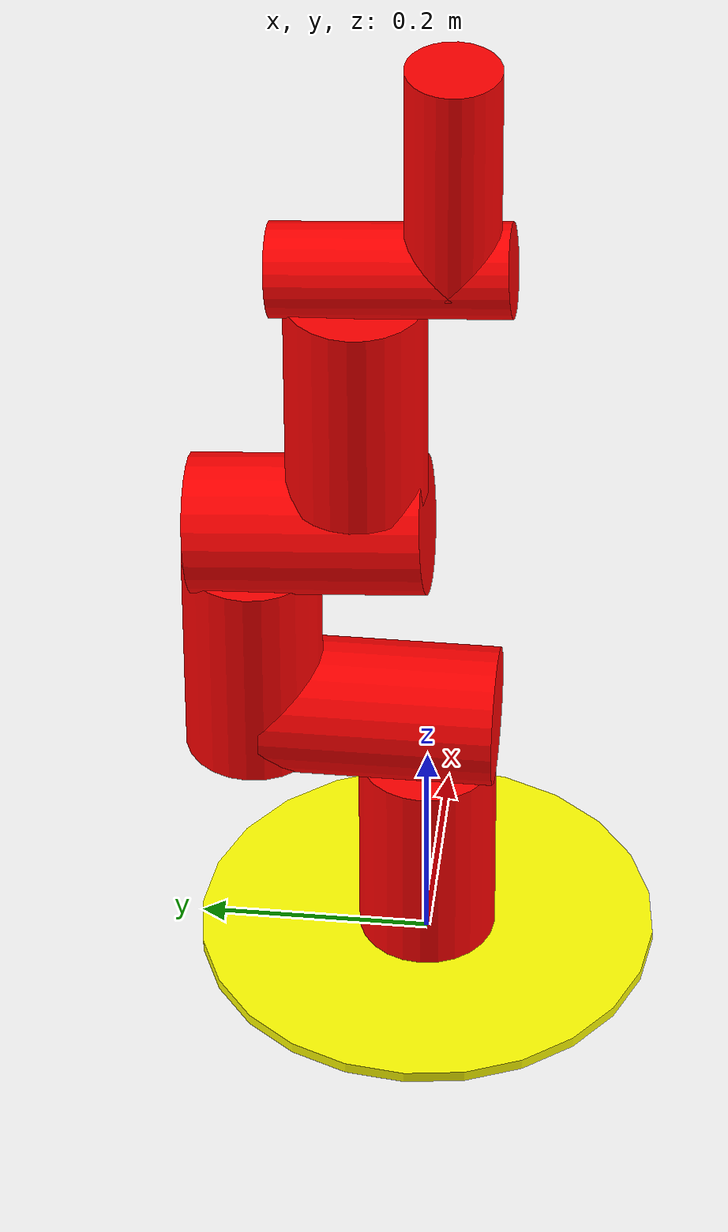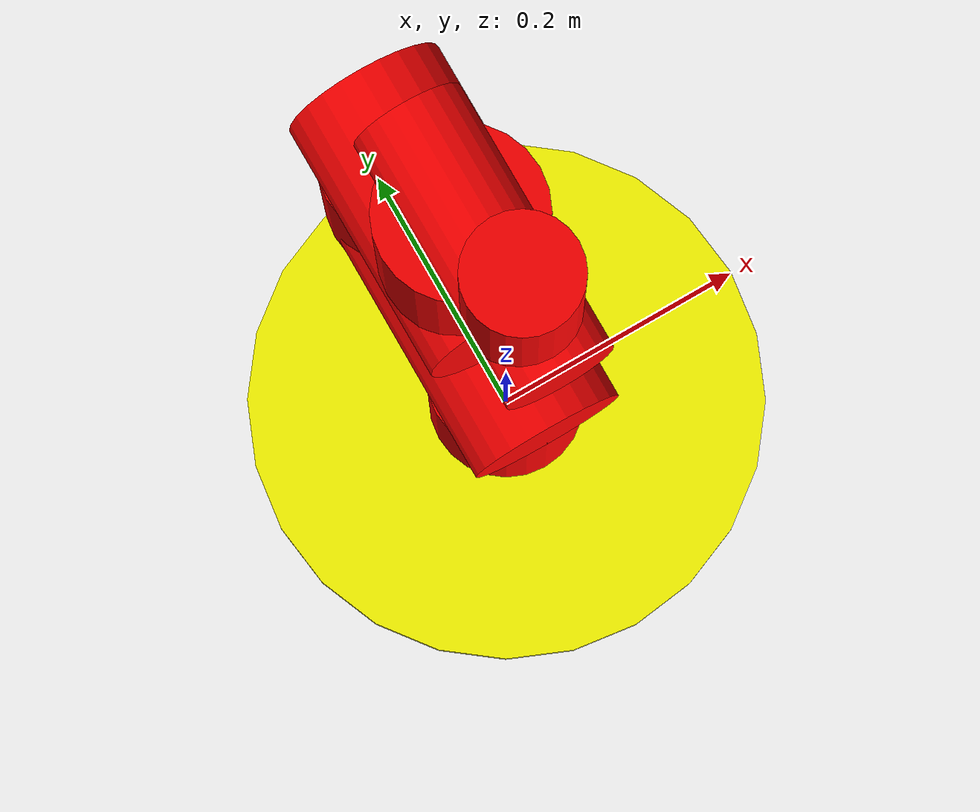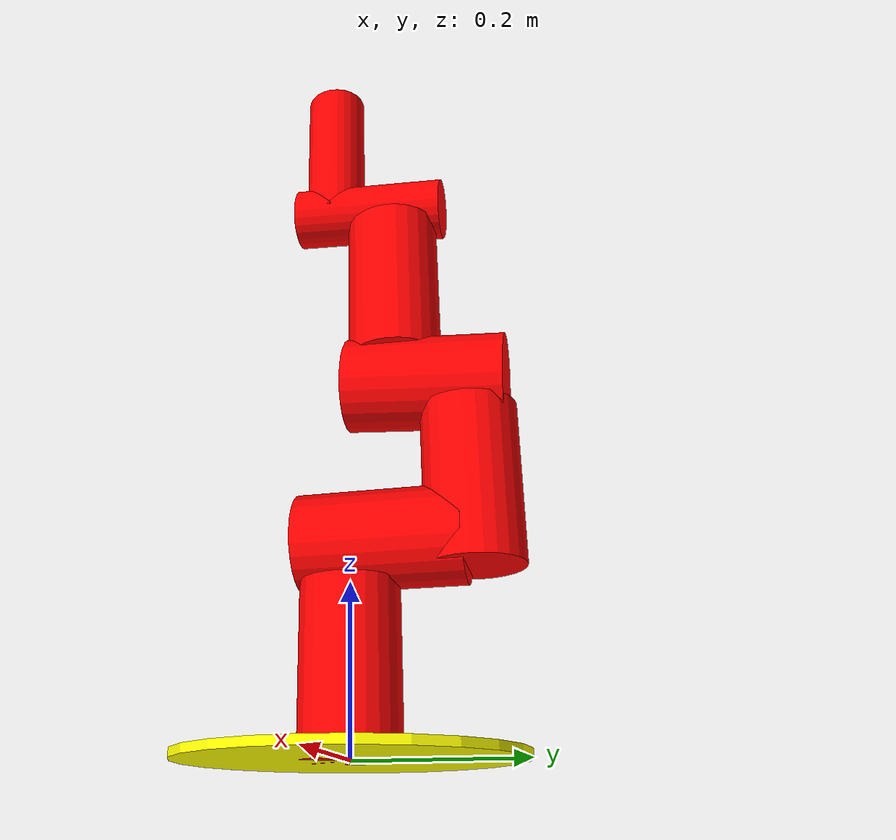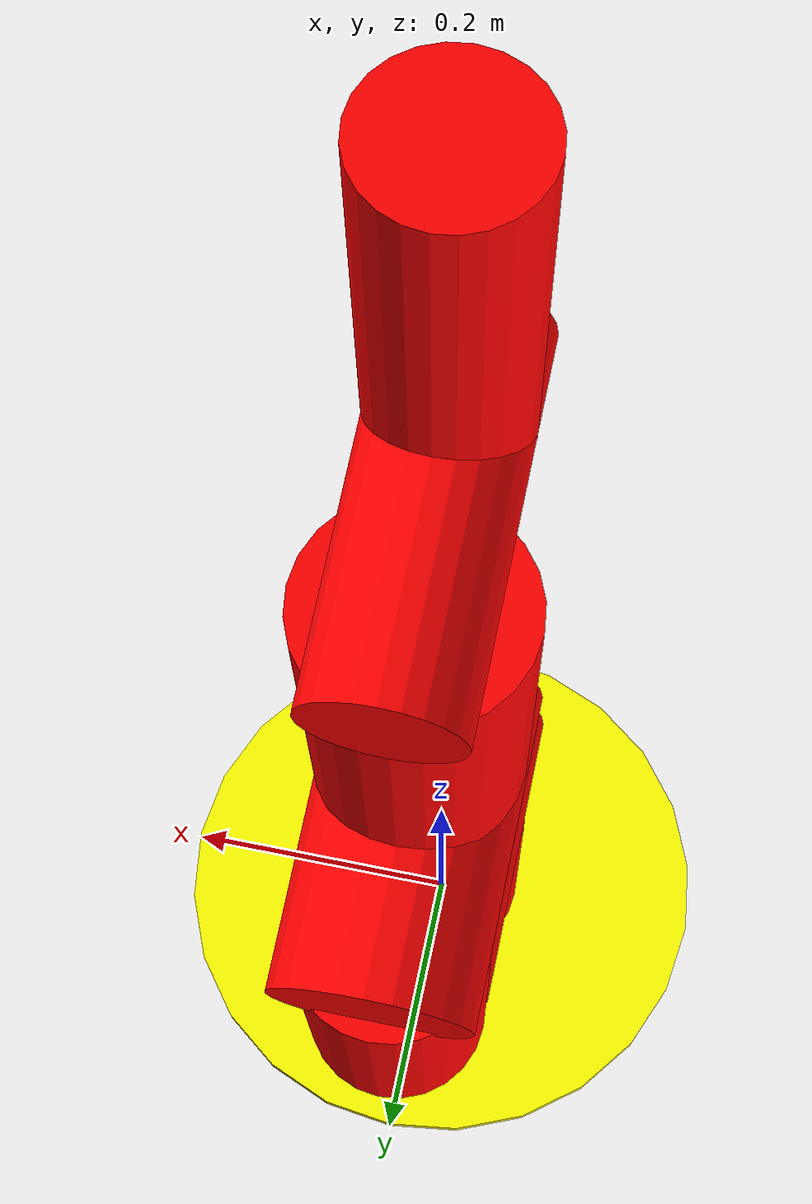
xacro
<?xml version="1.0"?>

<robot name="kuka_iiwa" xmlns:xacro="http://wiki.ros.org/xacro">
    <xacro:include filename="$(find rl_robot_kuka_slider_pkg)/urdf/kuka_iiwa_macro.xacro" />
	   <xacro:base_link_macro
			base_link_name="ground">
		</xacro:base_link_macro>

		<xacro:kuka_prismatic_joint
			name="slider"
			type="prismatic"
			parent="ground"
			child="base_link">
			<origin xyz="0 0 0" />
			<axis xyz="1 0 0"/>
			<limit effort="300" velocity="0.1" lower="-1" upper="1"/>
		</xacro:kuka_prismatic_joint>

		<xacro:base_link_macro
			base_link_name="base_link">
		</xacro:base_link_macro>

		<xacro:kuka_joint
			name="one_joint"
			type="revolute"
			parent="base_link"
			child="one_link">
			<origin xyz="0 0 0.1" />
			<axis xyz="0 0 1"/>
		</xacro:kuka_joint>

		<xacro:kuka_link name="one_link">
			<geometry>
				<cylinder length="0.2" radius="0.06"/>
			</geometry>
			<origin xyz="0 0 0" rpy="0 0 0"/>
		</xacro:kuka_link>

		<xacro:kuka_joint
			name="two_joint"
			type="revolute"
			parent="one_link"
			child="two_link">
			<origin xyz="0 0 0.15" />
			<axis xyz="0 1 0"/>
		</xacro:kuka_joint>

		<xacro:kuka_link name="two_link">
			<geometry>
				<cylinder length="0.2" radius="0.06"/>
			</geometry>
			<origin xyz="0 0.04 0" rpy="-1.57 0 0"/>
		</xacro:kuka_link>

		<xacro:kuka_joint
			name="three_joint"
			type="revolute"
			parent="two_link"
			child="three_link">
			<origin xyz="0 0.15 0" />
			<axis xyz="0 0 1"/>
		</xacro:kuka_joint>

		<xacro:kuka_link name="three_link">
			<geometry>
				<cylinder length="0.2" radius="0.06"/>
			</geometry>
			<origin xyz="0 0 0.06" rpy="0 0 0"/>
		</xacro:kuka_link>

		<xacro:kuka_joint
			name="four_joint"
			type="revolute"
			parent="three_link"
			child="four_link">
			<origin xyz="0 0 0.15" />
			<axis xyz="0 -1 0"/>
		</xacro:kuka_joint>

		<xacro:kuka_link name="four_link">
			<geometry>
				<cylinder length="0.2" radius="0.06"/>
			</geometry>
			<origin xyz="0 -0.05 0.05" rpy="1.5 0 0"/>
		</xacro:kuka_link>

		<xacro:kuka_joint
			name="five_joint"
			type="revolute"
			parent="four_link"
			child="five_link">
			<origin xyz="0 -0.09 0.14" />
			<axis xyz="0 0 1"/>
		</xacro:kuka_joint>

		<xacro:kuka_link name="five_link">
			<geometry>
				<cylinder length="0.2" radius="0.06"/>
			</geometry>
			<origin xyz="0 0 0.05" rpy="0 0 0"/>
		</xacro:kuka_link>

			<xacro:kuka_joint
			name="six_joint"
			type="revolute"
			parent="five_link"
			child="six_link">
			<origin xyz="0 -0.03 0.15" />
			<axis xyz="0 1 0"/>
		</xacro:kuka_joint>

		<xacro:kuka_link name="six_link">
			<geometry>
				<cylinder length="0.2" radius="0.04"/>
			</geometry>
			<origin xyz="0 0 0.03" rpy="1.50 0 0"/>
		</xacro:kuka_link>

      <xacro:kuka_joint
			name="seven_joint"
			type="revolute"
			parent="six_link"
			child="seven_link">
			<origin xyz="0 -0.05 0.03" />
			<axis xyz="0 0 1"/>
		</xacro:kuka_joint>

		<xacro:kuka_link name="seven_link">
			<geometry>
				<cylinder length="0.2" radius="0.04"/>
			</geometry>
			<origin xyz="0 0 0.1" rpy="0 0 0"/>
		</xacro:kuka_link>

</robot>

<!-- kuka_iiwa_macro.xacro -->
<robot name="kuka_iiwa_macro" xmlns:xacro="http://wiki.ros.org/xacro">

	<xacro:macro name="base_link_macro" params="base_link_name">
		<link name="${base_link_name}">
			<visual>
				<geometry>
					<cylinder length="0.01" radius="0.2"/>
				</geometry>
				<origin rpy="0 0 0" xyz="0 0 0.005"/>
					<material name="yellow">
						<color rgba="1 1 0 1"/>
					</material>
			</visual>
			<collision>
				<geometry>
					<cylinder length="0.03" radius="0.2"/>
				</geometry>
				<origin rpy="0 0 0" xyz="0 0 0"/>
			</collision>
			<inertial>
				<mass value="1"/>
					<inertia ixx="1.0" ixy="0.0" ixz="0.0" iyy="1.0" iyz="0.0" izz="1.0"/>
					</inertial>
		</link>
	</xacro:macro>

	<xacro:macro name="kuka_joint" params="name type parent child *origin *axis">
		<joint name="${name}" type="${type}">
			<parent link="${parent}" />
			<child link="${child}" />
	    <xacro:insert_block name="origin" />
			<xacro:insert_block name="axis" />
	    <limit effort="300" velocity="0.1" lower="-3.14" upper="3.14"/>
	    <dynamics damping="50" friction="1"/>
		</joint>
	</xacro:macro>

   <xacro:macro name="kuka_prismatic_joint" params="name type parent child *origin *axis *limit">
		<joint name="${name}" type="${type}">
			<parent link="${parent}" />
			<child link="${child}" />
	    <xacro:insert_block name="origin" />
			<xacro:insert_block name="axis" />
	    <xacro:insert_block name="limit" />
	    <dynamics damping="50" friction="1"/>
		</joint>
	</xacro:macro>

	<xacro:macro name="kuka_link" params="name *geometry *origin">
		<link name="${name}">
			<visual>
				<xacro:insert_block name="geometry" />
				<xacro:insert_block name="origin" />
		    <material name="red">
		      <color rgba="1 0 0 1"/>
		    </material>
		  </visual>
		  <collision>
				<xacro:insert_block name="geometry" />
				<xacro:insert_block name="origin" />
			</collision>
			<inertial>
				<mass value="1"/>
					<inertia ixx="1.0" ixy="0.0" ixz="0.0" iyy="1.0" iyz="0.0" izz="1.0"/>
		  </inertial>
	  </link>
	</xacro:macro>

</robot>
